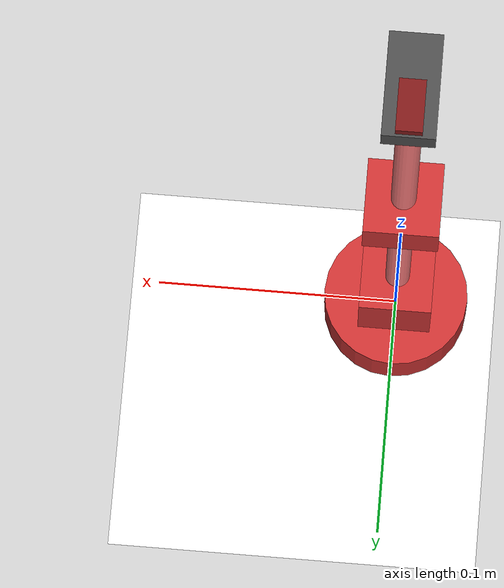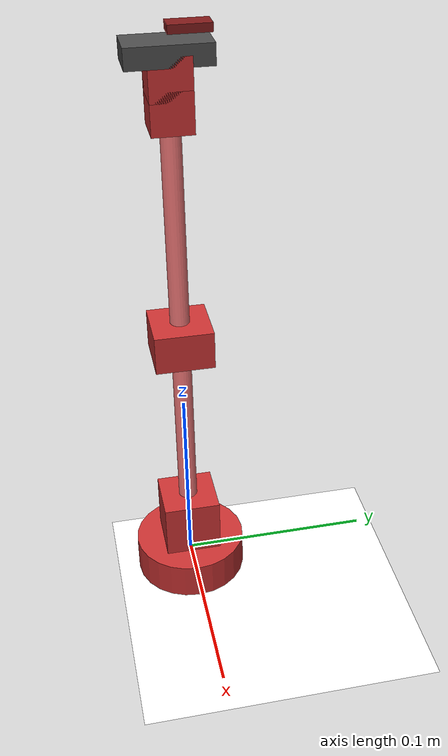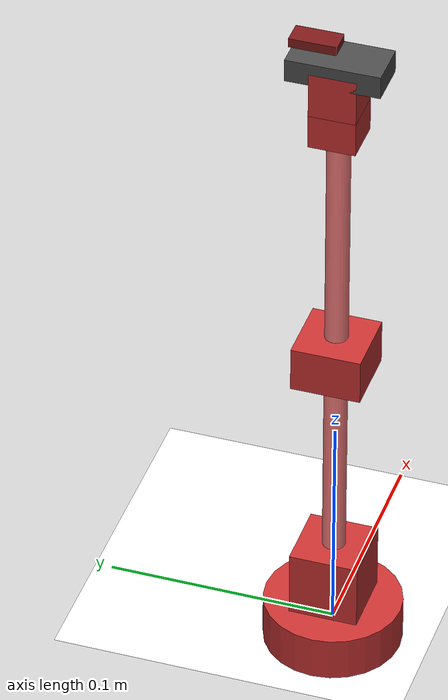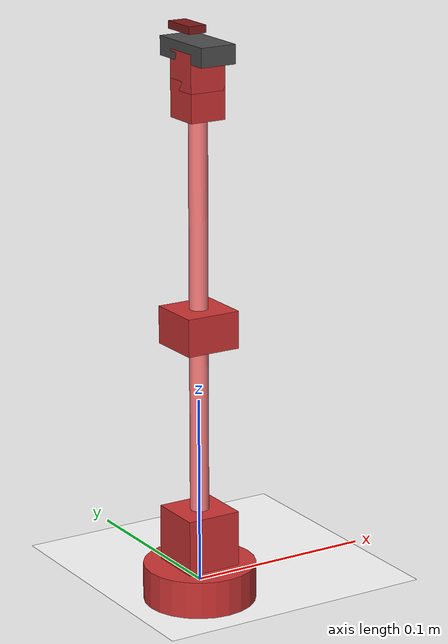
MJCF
<mujoco model="leader_arm">
    <visual>
        <headlight diffuse="0.6 0.6 0.6" ambient="0.3 0.3 0.3" specular="0 0 0"/>
        <rgba haze="0.15 0.25 0.35 1"/>
        <global azimuth="120" elevation="-20"/>
    </visual>

    <asset>
        <texture type="skybox" builtin="gradient" rgb1="0.3 0.5 0.7" rgb2="0 0 0" width="512" height="512"/>
        <texture name="grid" type="2d" builtin="checker" rgb1="0.2 0.3 0.4" rgb2="0.1 0.2 0.3" width="512" height="512"/>
        <material name="floor_mat" texture="grid" texrepeat="1 1" texuniform="true" reflectance="0.2"/>
    </asset>

    <default>
        <joint armature="1" damping="1" limited="true"/>
        <geom conaffinity="0" condim="3" density="5.0" friction="1 0.5 0.5" margin="0.001" rgba="0.8 0.2 0.2 1"/>
        <position kp="1"/>
    </default>

    <worldbody>
        <!-- Environment -->
        <light dir="-0 0 -1" pos="0 0 1.5" castshadow="false"/>
        <geom name="floor" type="plane" size="0.4 0.4 0.1" material="floor_mat" rgba="1 1 1 1" pos="0 0 -0.01"/>

        <!-- World Frame XYZ: Z is UP, X is FORWARD, Y is LEFT -->
        <body name="l_base" pos="0 0 0">
            <!-- J1 aligns with Z -->
            <geom name="l_base_geom" type="cylinder" size="0.03 0.01"/>
            <joint name="l_joint1" type="hinge" axis="0 0 1" range="-170 170"/>

            <body name="l_shoulder" pos="0 0 0.02">
                <!-- J2 aligns with Y (Pitch) -->
                <geom name="l_shoulder_geom" type="box" size="0.015 0.015 0.02" pos="0 0 0"/>
                <joint name="l_joint2" type="hinge" axis="0 1 0" range="-90 90"/>

                <body name="l_upper_arm" pos="0 0 0">
                    <!-- L1 = 12cm -->
                    <geom name="l_upper_arm_geom" type="cylinder" size="0.005 0.06" rgba="1 0.5 0.5 1" pos="0 0 0.06"/>

                    <body name="l_elbow" pos="0 0 0.12">
                        <!-- J3 aligns with Y (Pitch) -->
                        <geom name="l_elbow_geom" type="box" size="0.015 0.015 0.01" pos="0 0 0"/>
                        <joint name="l_joint3" type="hinge" axis="0 1 0" range="-120 120"/>

                        <body name="l_forearm" pos="0 0 0">
                            <!-- L2 = 12cm -->
                            <geom name="l_forearm_geom" type="cylinder" size="0.005 0.06" rgba="1 0.5 0.5 1" pos="0 0 0.06"/>

                            <body name="l_wrist_pitch" pos="0 0 0.12">
                                <!-- J4 aligns with Y (Pitch) -->
                                <geom name="l_wrist_geom" type="box" size="0.01 0.01 0.01" pos="0 0 0"/>
                                <joint name="l_joint4" type="hinge" axis="0 1 0" range="-90 90"/>

                                <body name="l_wrist_roll" pos="0 0 0.015">
                                    <!-- J5 aligns with Z (Roll) -->
                                    <geom name="l_wrist_roll_geom" type="box" size="0.01 0.01 0.01"/>
                                    <joint name="l_joint5" type="hinge" axis="0 0 1" range="-170 170"/>

                                    <body name="l_trigger_handle" pos="0 0 0.01">
                                        <!-- Remote actuation handle -->
                                        <geom name="l_handle" type="box" size="0.01 0.02 0.005" rgba="0.3 0.3 0.3 1"/>
                                        <body name="l_trigger_finger" pos="0 0.01 0.01">
                                            <!-- Simple trigger hinge for operator to pull -->
                                            <geom name="l_trigger_geom" type="box" size="0.005 0.01 0.002" rgba="0.5 0.1 0.1 1"/>
                                            <joint name="l_joint6_trigger" type="hinge" axis="1 0 0" range="0 30"/>
                                        </body>
                                    </body>
                                </body>
                            </body>
                        </body>
                    </body>
                </body>
            </body>
        </body>
    </worldbody>

    <actuator>
        <!-- In the real world, leader arm is mostly passive, but we define actuators for sim tests -->
        <position name="l_motor1" joint="l_joint1"/>
        <position name="l_motor2" joint="l_joint2"/>
        <position name="l_motor3" joint="l_joint3"/>
        <position name="l_motor4" joint="l_joint4"/>
        <position name="l_motor5" joint="l_joint5"/>
        <position name="l_motor6" joint="l_joint6_trigger"/>
    </actuator>
</mujoco>
